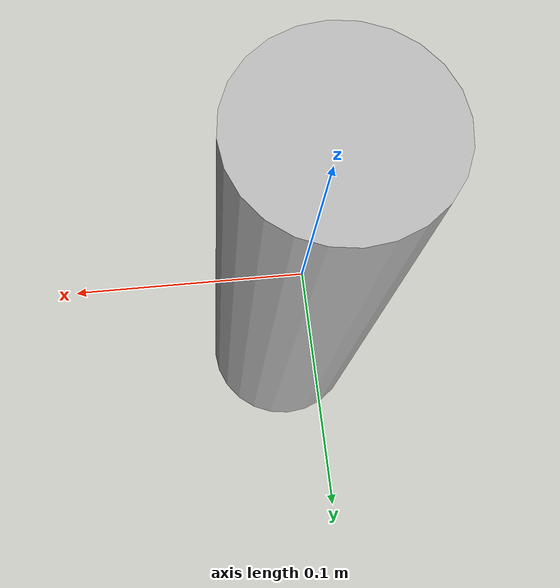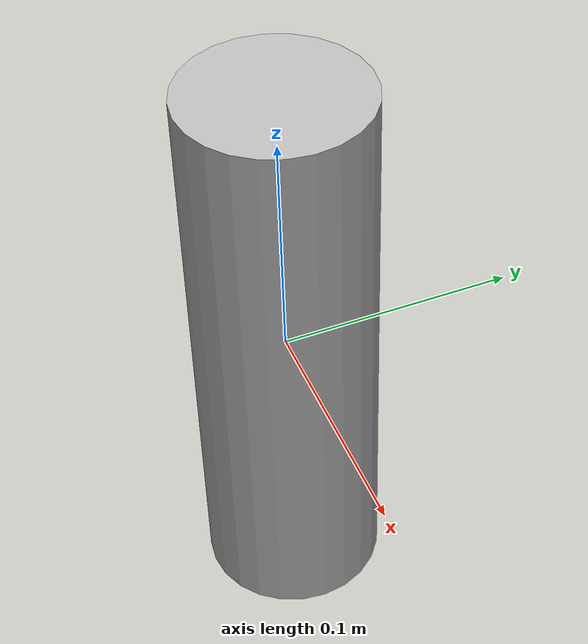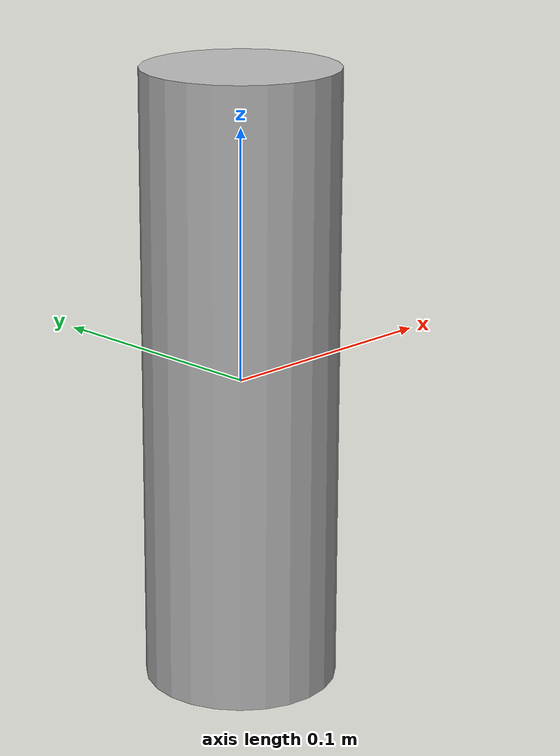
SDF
<?xml version="1.0" ?>
<sdf version="1.4">
  <model name="spam">
    <link name="link">
      <inertial>
        <mass>0.01</mass>
      </inertial>
      <collision name="collision">
        <pose>0.0 0.0 0.0 0 0.0 0.0</pose>
        <geometry>
          <cylinder>
            <radius>0.0385</radius>
            <length>0.247</length>
          </cylinder>
        </geometry>
      </collision>
      <visual name="visual">
        <pose>0.0 0.0 0.0 0 0.0 0.0</pose>
        <geometry>
          <cylinder>
            <radius>0.0385</radius>
            <length>0.247</length>
          </cylinder>
        </geometry>
      </visual>
    </link>
  </model>
</sdf>
